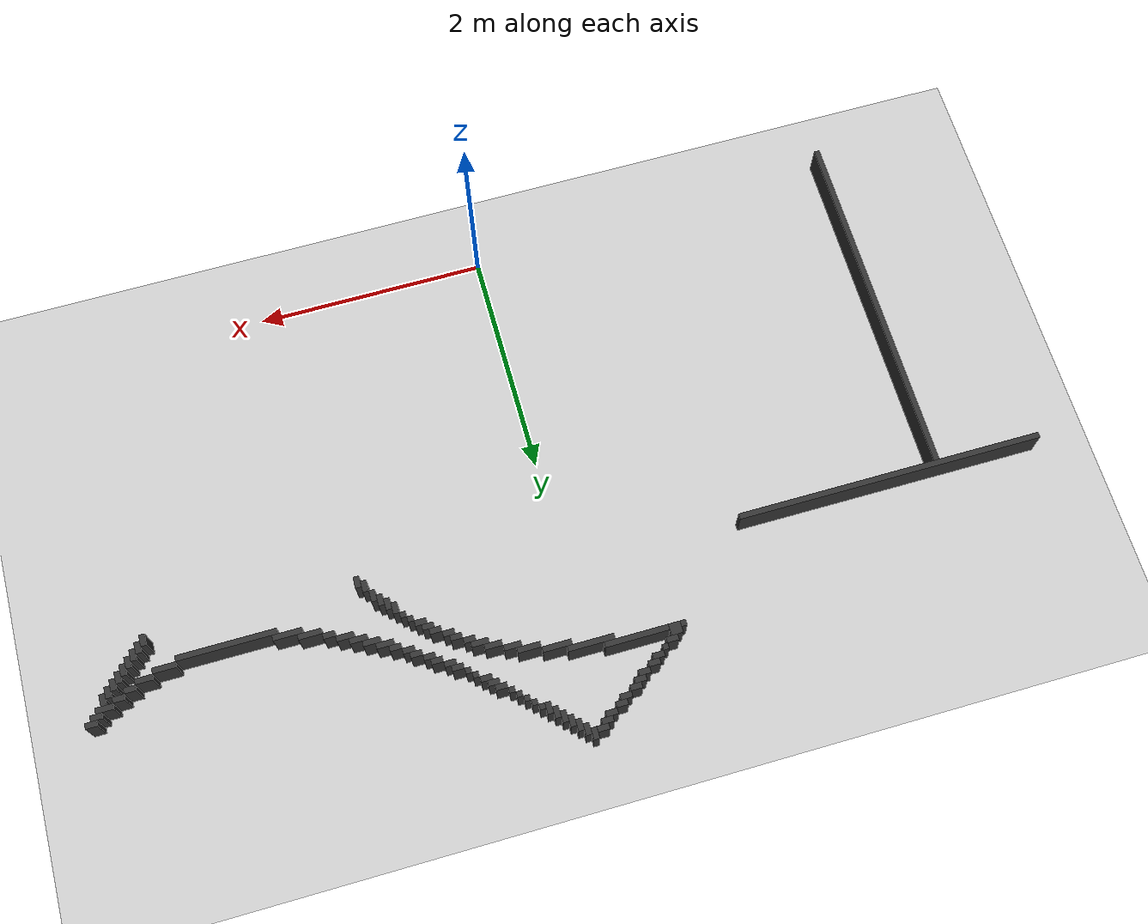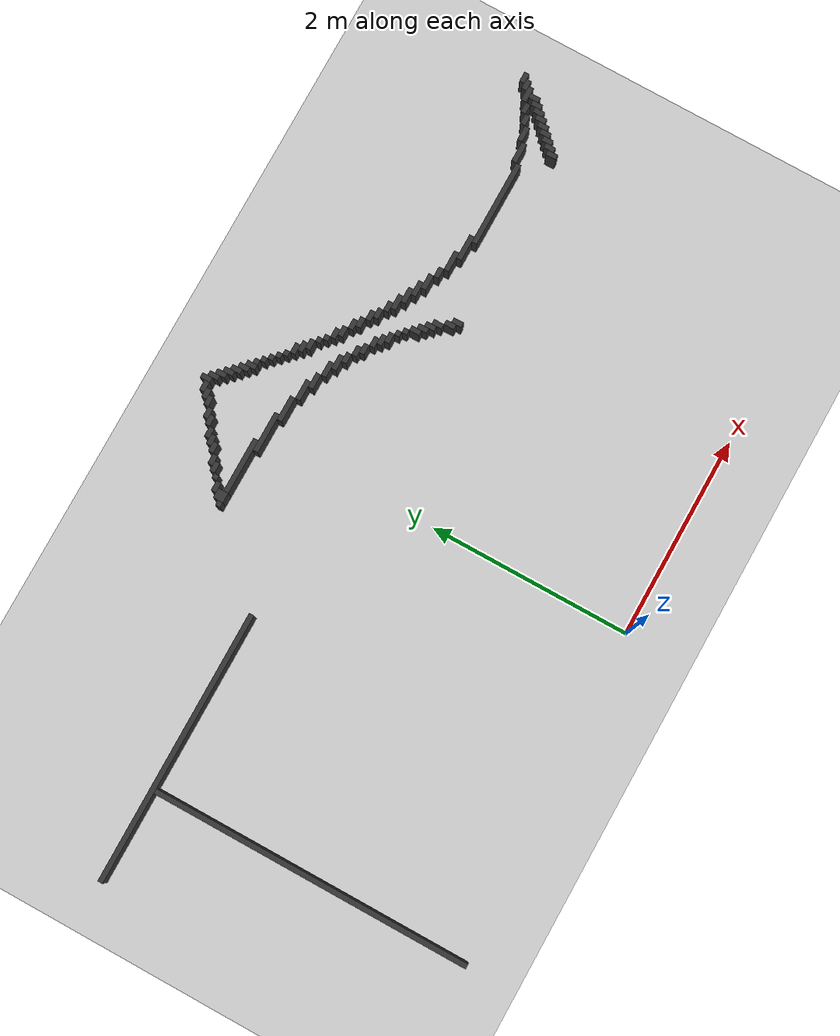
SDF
<sdf version="1.7">
 <world name="mapa_mundo">
  <model name="ground_plane">
   <static>true</static>
   <link name="link">
    <collision name="collision">
     <geometry><plane><normal>0 0 1</normal><size>10 10</size></plane></geometry>
     <surface><friction><ode><mu>100</mu><mu2>50</mu2></ode></friction></surface>
    </collision>
    <visual name="visual">
     <geometry><plane><normal>0 0 1</normal><size>10 10</size></plane></geometry>
     <material>
      <ambient>0.8 0.8 0.8 1</ambient>
      <diffuse>0.8 0.8 0.8 1</diffuse>
      <specular>0.8 0.8 0.8 1</specular>
     </material>
    </visual>
   </link>
  </model>
  <model name="wall_0">
   <static>true</static>
   <link name="link">
    <collision name="collision"><geometry><box><size>0.05 0.1 0.3</size></box></geometry></collision>
    <visual name="visual">
     <geometry><box><size>0.05 0.1 0.3</size></box></geometry>
     <material><ambient>0.2 0.2 0.2 1</ambient><diffuse>0.2 0.2 0.2 1</diffuse></material>
    </visual>
    <pose>0.17500000000000002 4.45 0.15 0 0 0</pose>
   </link>
  </model>
  <model name="wall_1">
   <static>true</static>
   <link name="link">
    <collision name="collision"><geometry><box><size>0.1 0.05 0.3</size></box></geometry></collision>
    <visual name="visual">
     <geometry><box><size>0.1 0.05 0.3</size></box></geometry>
     <material><ambient>0.2 0.2 0.2 1</ambient><diffuse>0.2 0.2 0.2 1</diffuse></material>
    </visual>
    <pose>0.1 4.425 0.15 0 0 0</pose>
   </link>
  </model>
  <model name="wall_2">
   <static>true</static>
   <link name="link">
    <collision name="collision"><geometry><box><size>0.05 0.1 0.3</size></box></geometry></collision>
    <visual name="visual">
     <geometry><box><size>0.05 0.1 0.3</size></box></geometry>
     <material><ambient>0.2 0.2 0.2 1</ambient><diffuse>0.2 0.2 0.2 1</diffuse></material>
    </visual>
    <pose>0.225 4.4 0.15 0 0 0</pose>
   </link>
  </model>
  <model name="wall_3">
   <static>true</static>
   <link name="link">
    <collision name="collision"><geometry><box><size>0.1 0.05 0.3</size></box></geometry></collision>
    <visual name="visual">
     <geometry><box><size>0.1 0.05 0.3</size></box></geometry>
     <material><ambient>0.2 0.2 0.2 1</ambient><diffuse>0.2 0.2 0.2 1</diffuse></material>
    </visual>
    <pose>0.05 4.375 0.15 0 0 0</pose>
   </link>
  </model>
  <model name="wall_4">
   <static>true</static>
   <link name="link">
    <collision name="collision"><geometry><box><size>0.05 0.1 0.3</size></box></geometry></collision>
    <visual name="visual">
     <geometry><box><size>0.05 0.1 0.3</size></box></geometry>
     <material><ambient>0.2 0.2 0.2 1</ambient><diffuse>0.2 0.2 0.2 1</diffuse></material>
    </visual>
    <pose>0.275 4.3500000000000005 0.15 0 0 0</pose>
   </link>
  </model>
  <model name="wall_5">
   <static>true</static>
   <link name="link">
    <collision name="collision"><geometry><box><size>0.1 0.05 0.3</size></box></geometry></collision>
    <visual name="visual">
     <geometry><box><size>0.1 0.05 0.3</size></box></geometry>
     <material><ambient>0.2 0.2 0.2 1</ambient><diffuse>0.2 0.2 0.2 1</diffuse></material>
    </visual>
    <pose>0.0 4.325 0.15 0 0 0</pose>
   </link>
  </model>
  <model name="wall_6">
   <static>true</static>
   <link name="link">
    <collision name="collision"><geometry><box><size>0.05 0.1 0.3</size></box></geometry></collision>
    <visual name="visual">
     <geometry><box><size>0.05 0.1 0.3</size></box></geometry>
     <material><ambient>0.2 0.2 0.2 1</ambient><diffuse>0.2 0.2 0.2 1</diffuse></material>
    </visual>
    <pose>0.325 4.3 0.15 0 0 0</pose>
   </link>
  </model>
  <model name="wall_7">
   <static>true</static>
   <link name="link">
    <collision name="collision"><geometry><box><size>0.1 0.05 0.3</size></box></geometry></collision>
    <visual name="visual">
     <geometry><box><size>0.1 0.05 0.3</size></box></geometry>
     <material><ambient>0.2 0.2 0.2 1</ambient><diffuse>0.2 0.2 0.2 1</diffuse></material>
    </visual>
    <pose>-0.1 4.275 0.15 0 0 0</pose>
   </link>
  </model>
  <model name="wall_8">
   <static>true</static>
   <link name="link">
    <collision name="collision"><geometry><box><size>0.05 0.1 0.3</size></box></geometry></collision>
    <visual name="visual">
     <geometry><box><size>0.05 0.1 0.3</size></box></geometry>
     <material><ambient>0.2 0.2 0.2 1</ambient><diffuse>0.2 0.2 0.2 1</diffuse></material>
    </visual>
    <pose>0.375 4.25 0.15 0 0 0</pose>
   </link>
  </model>
  <model name="wall_9">
   <static>true</static>
   <link name="link">
    <collision name="collision"><geometry><box><size>0.1 0.05 0.3</size></box></geometry></collision>
    <visual name="visual">
     <geometry><box><size>0.1 0.05 0.3</size></box></geometry>
     <material><ambient>0.2 0.2 0.2 1</ambient><diffuse>0.2 0.2 0.2 1</diffuse></material>
    </visual>
    <pose>-0.15000000000000002 4.2250000000000005 0.15 0 0 0</pose>
   </link>
  </model>
  <model name="wall_10">
   <static>true</static>
   <link name="link">
    <collision name="collision"><geometry><box><size>0.05 0.1 0.3</size></box></geometry></collision>
    <visual name="visual">
     <geometry><box><size>0.05 0.1 0.3</size></box></geometry>
     <material><ambient>0.2 0.2 0.2 1</ambient><diffuse>0.2 0.2 0.2 1</diffuse></material>
    </visual>
    <pose>0.42500000000000004 4.2 0.15 0 0 0</pose>
   </link>
  </model>
  <model name="wall_11">
   <static>true</static>
   <link name="link">
    <collision name="collision"><geometry><box><size>0.1 0.05 0.3</size></box></geometry></collision>
    <visual name="visual">
     <geometry><box><size>0.1 0.05 0.3</size></box></geometry>
     <material><ambient>0.2 0.2 0.2 1</ambient><diffuse>0.2 0.2 0.2 1</diffuse></material>
    </visual>
    <pose>-0.25 4.175 0.15 0 0 0</pose>
   </link>
  </model>
  <model name="wall_12">
   <static>true</static>
   <link name="link">
    <collision name="collision"><geometry><box><size>0.05 0.1 0.3</size></box></geometry></collision>
    <visual name="visual">
     <geometry><box><size>0.05 0.1 0.3</size></box></geometry>
     <material><ambient>0.2 0.2 0.2 1</ambient><diffuse>0.2 0.2 0.2 1</diffuse></material>
    </visual>
    <pose>0.47500000000000003 4.15 0.15 0 0 0</pose>
   </link>
  </model>
  <model name="wall_13">
   <static>true</static>
   <link name="link">
    <collision name="collision"><geometry><box><size>0.1 0.05 0.3</size></box></geometry></collision>
    <visual name="visual">
     <geometry><box><size>0.1 0.05 0.3</size></box></geometry>
     <material><ambient>0.2 0.2 0.2 1</ambient><diffuse>0.2 0.2 0.2 1</diffuse></material>
    </visual>
    <pose>-0.30000000000000004 4.125 0.15 0 0 0</pose>
   </link>
  </model>
  <model name="wall_14">
   <static>true</static>
   <link name="link">
    <collision name="collision"><geometry><box><size>0.05 0.05 0.3</size></box></geometry></collision>
    <visual name="visual">
     <geometry><box><size>0.05 0.05 0.3</size></box></geometry>
     <material><ambient>0.2 0.2 0.2 1</ambient><diffuse>0.2 0.2 0.2 1</diffuse></material>
    </visual>
    <pose>0.525 4.125 0.15 0 0 0</pose>
   </link>
  </model>
  <model name="wall_15">
   <static>true</static>
   <link name="link">
    <collision name="collision"><geometry><box><size>0.1 0.05 0.3</size></box></geometry></collision>
    <visual name="visual">
     <geometry><box><size>0.1 0.05 0.3</size></box></geometry>
     <material><ambient>0.2 0.2 0.2 1</ambient><diffuse>0.2 0.2 0.2 1</diffuse></material>
    </visual>
    <pose>-0.35000000000000003 4.075 0.15 0 0 0</pose>
   </link>
  </model>
  <model name="wall_16">
   <static>true</static>
   <link name="link">
    <collision name="collision"><geometry><box><size>0.05 0.05 0.3</size></box></geometry></collision>
    <visual name="visual">
     <geometry><box><size>0.05 0.05 0.3</size></box></geometry>
     <material><ambient>0.2 0.2 0.2 1</ambient><diffuse>0.2 0.2 0.2 1</diffuse></material>
    </visual>
    <pose>0.5750000000000001 4.075 0.15 0 0 0</pose>
   </link>
  </model>
  <model name="wall_17">
   <static>true</static>
   <link name="link">
    <collision name="collision"><geometry><box><size>0.1 0.05 0.3</size></box></geometry></collision>
    <visual name="visual">
     <geometry><box><size>0.1 0.05 0.3</size></box></geometry>
     <material><ambient>0.2 0.2 0.2 1</ambient><diffuse>0.2 0.2 0.2 1</diffuse></material>
    </visual>
    <pose>-0.45 4.025 0.15 0 0 0</pose>
   </link>
  </model>
  <model name="wall_18">
   <static>true</static>
   <link name="link">
    <collision name="collision"><geometry><box><size>0.05 0.05 0.3</size></box></geometry></collision>
    <visual name="visual">
     <geometry><box><size>0.05 0.05 0.3</size></box></geometry>
     <material><ambient>0.2 0.2 0.2 1</ambient><diffuse>0.2 0.2 0.2 1</diffuse></material>
    </visual>
    <pose>0.625 4.025 0.15 0 0 0</pose>
   </link>
  </model>
  <model name="wall_19">
   <static>true</static>
   <link name="link">
    <collision name="collision"><geometry><box><size>0.1 0.05 0.3</size></box></geometry></collision>
    <visual name="visual">
     <geometry><box><size>0.1 0.05 0.3</size></box></geometry>
     <material><ambient>0.2 0.2 0.2 1</ambient><diffuse>0.2 0.2 0.2 1</diffuse></material>
    </visual>
    <pose>-0.5 3.975 0.15 0 0 0</pose>
   </link>
  </model>
  <model name="wall_20">
   <static>true</static>
   <link name="link">
    <collision name="collision"><geometry><box><size>0.05 0.05 0.3</size></box></geometry></collision>
    <visual name="visual">
     <geometry><box><size>0.05 0.05 0.3</size></box></geometry>
     <material><ambient>0.2 0.2 0.2 1</ambient><diffuse>0.2 0.2 0.2 1</diffuse></material>
    </visual>
    <pose>0.675 3.975 0.15 0 0 0</pose>
   </link>
  </model>
  <model name="wall_21">
   <static>true</static>
   <link name="link">
    <collision name="collision"><geometry><box><size>0.05 0.05 0.3</size></box></geometry></collision>
    <visual name="visual">
     <geometry><box><size>0.05 0.05 0.3</size></box></geometry>
     <material><ambient>0.2 0.2 0.2 1</ambient><diffuse>0.2 0.2 0.2 1</diffuse></material>
    </visual>
    <pose>-0.5750000000000001 3.9250000000000003 0.15 0 0 0</pose>
   </link>
  </model>
  <model name="wall_22">
   <static>true</static>
   <link name="link">
    <collision name="collision"><geometry><box><size>0.05 0.05 0.3</size></box></geometry></collision>
    <visual name="visual">
     <geometry><box><size>0.05 0.05 0.3</size></box></geometry>
     <material><ambient>0.2 0.2 0.2 1</ambient><diffuse>0.2 0.2 0.2 1</diffuse></material>
    </visual>
    <pose>0.7250000000000001 3.9250000000000003 0.15 0 0 0</pose>
   </link>
  </model>
  <model name="wall_23">
   <static>true</static>
   <link name="link">
    <collision name="collision"><geometry><box><size>0.1 0.05 0.3</size></box></geometry></collision>
    <visual name="visual">
     <geometry><box><size>0.1 0.05 0.3</size></box></geometry>
     <material><ambient>0.2 0.2 0.2 1</ambient><diffuse>0.2 0.2 0.2 1</diffuse></material>
    </visual>
    <pose>-0.65 3.875 0.15 0 0 0</pose>
   </link>
  </model>
  <model name="wall_24">
   <static>true</static>
   <link name="link">
    <collision name="collision"><geometry><box><size>0.1 0.05 0.3</size></box></geometry></collision>
    <visual name="visual">
     <geometry><box><size>0.1 0.05 0.3</size></box></geometry>
     <material><ambient>0.2 0.2 0.2 1</ambient><diffuse>0.2 0.2 0.2 1</diffuse></material>
    </visual>
    <pose>0.8 3.875 0.15 0 0 0</pose>
   </link>
  </model>
  <model name="wall_25">
   <static>true</static>
   <link name="link">
    <collision name="collision"><geometry><box><size>0.1 0.1 0.3</size></box></geometry></collision>
    <visual name="visual">
     <geometry><box><size>0.1 0.1 0.3</size></box></geometry>
     <material><ambient>0.2 0.2 0.2 1</ambient><diffuse>0.2 0.2 0.2 1</diffuse></material>
    </visual>
    <pose>-0.7000000000000001 3.8000000000000003 0.15 0 0 0</pose>
   </link>
  </model>
  <model name="wall_26">
   <static>true</static>
   <link name="link">
    <collision name="collision"><geometry><box><size>0.1 0.05 0.3</size></box></geometry></collision>
    <visual name="visual">
     <geometry><box><size>0.1 0.05 0.3</size></box></geometry>
     <material><ambient>0.2 0.2 0.2 1</ambient><diffuse>0.2 0.2 0.2 1</diffuse></material>
    </visual>
    <pose>0.8500000000000001 3.825 0.15 0 0 0</pose>
   </link>
  </model>
  <model name="wall_27">
   <static>true</static>
   <link name="link">
    <collision name="collision"><geometry><box><size>0.05 0.05 0.3</size></box></geometry></collision>
    <visual name="visual">
     <geometry><box><size>0.05 0.05 0.3</size></box></geometry>
     <material><ambient>0.2 0.2 0.2 1</ambient><diffuse>0.2 0.2 0.2 1</diffuse></material>
    </visual>
    <pose>-0.775 3.7750000000000004 0.15 0 0 0</pose>
   </link>
  </model>
  <model name="wall_28">
   <static>true</static>
   <link name="link">
    <collision name="collision"><geometry><box><size>0.55 0.05 0.3</size></box></geometry></collision>
    <visual name="visual">
     <geometry><box><size>0.55 0.05 0.3</size></box></geometry>
     <material><ambient>0.2 0.2 0.2 1</ambient><diffuse>0.2 0.2 0.2 1</diffuse></material>
    </visual>
    <pose>-0.375 3.7750000000000004 0.15 0 0 0</pose>
   </link>
  </model>
  <model name="wall_29">
   <static>true</static>
   <link name="link">
    <collision name="collision"><geometry><box><size>0.1 0.05 0.3</size></box></geometry></collision>
    <visual name="visual">
     <geometry><box><size>0.1 0.05 0.3</size></box></geometry>
     <material><ambient>0.2 0.2 0.2 1</ambient><diffuse>0.2 0.2 0.2 1</diffuse></material>
    </visual>
    <pose>0.9 3.7750000000000004 0.15 0 0 0</pose>
   </link>
  </model>
  <model name="wall_30">
   <static>true</static>
   <link name="link">
    <collision name="collision"><geometry><box><size>0.4 0.05 0.3</size></box></geometry></collision>
    <visual name="visual">
     <geometry><box><size>0.4 0.05 0.3</size></box></geometry>
     <material><ambient>0.2 0.2 0.2 1</ambient><diffuse>0.2 0.2 0.2 1</diffuse></material>
    </visual>
    <pose>0.0 3.725 0.15 0 0 0</pose>
   </link>
  </model>
  <model name="wall_31">
   <static>true</static>
   <link name="link">
    <collision name="collision"><geometry><box><size>0.05 0.05 0.3</size></box></geometry></collision>
    <visual name="visual">
     <geometry><box><size>0.05 0.05 0.3</size></box></geometry>
     <material><ambient>0.2 0.2 0.2 1</ambient><diffuse>0.2 0.2 0.2 1</diffuse></material>
    </visual>
    <pose>0.9750000000000001 3.725 0.15 0 0 0</pose>
   </link>
  </model>
  <model name="wall_32">
   <static>true</static>
   <link name="link">
    <collision name="collision"><geometry><box><size>0.25 0.05 0.3</size></box></geometry></collision>
    <visual name="visual">
     <geometry><box><size>0.25 0.05 0.3</size></box></geometry>
     <material><ambient>0.2 0.2 0.2 1</ambient><diffuse>0.2 0.2 0.2 1</diffuse></material>
    </visual>
    <pose>0.275 3.6750000000000003 0.15 0 0 0</pose>
   </link>
  </model>
  <model name="wall_33">
   <static>true</static>
   <link name="link">
    <collision name="collision"><geometry><box><size>0.05 0.05 0.3</size></box></geometry></collision>
    <visual name="visual">
     <geometry><box><size>0.05 0.05 0.3</size></box></geometry>
     <material><ambient>0.2 0.2 0.2 1</ambient><diffuse>0.2 0.2 0.2 1</diffuse></material>
    </visual>
    <pose>1.0250000000000001 3.6750000000000003 0.15 0 0 0</pose>
   </link>
  </model>
  <model name="wall_34">
   <static>true</static>
   <link name="link">
    <collision name="collision"><geometry><box><size>0.2 0.05 0.3</size></box></geometry></collision>
    <visual name="visual">
     <geometry><box><size>0.2 0.05 0.3</size></box></geometry>
     <material><ambient>0.2 0.2 0.2 1</ambient><diffuse>0.2 0.2 0.2 1</diffuse></material>
    </visual>
    <pose>0.5 3.625 0.15 0 0 0</pose>
   </link>
  </model>
  <model name="wall_35">
   <static>true</static>
   <link name="link">
    <collision name="collision"><geometry><box><size>0.1 0.05 0.3</size></box></geometry></collision>
    <visual name="visual">
     <geometry><box><size>0.1 0.05 0.3</size></box></geometry>
     <material><ambient>0.2 0.2 0.2 1</ambient><diffuse>0.2 0.2 0.2 1</diffuse></material>
    </visual>
    <pose>1.1 3.625 0.15 0 0 0</pose>
   </link>
  </model>
  <model name="wall_36">
   <static>true</static>
   <link name="link">
    <collision name="collision">
     <geometry><box><size>0.15000000000000002 0.05 0.3</size></box></geometry>
    </collision>
    <visual name="visual">
     <geometry><box><size>0.15000000000000002 0.05 0.3</size></box></geometry>
     <material><ambient>0.2 0.2 0.2 1</ambient><diffuse>0.2 0.2 0.2 1</diffuse></material>
    </visual>
    <pose>0.625 3.575 0.15 0 0 0</pose>
   </link>
  </model>
  <model name="wall_37">
   <static>true</static>
   <link name="link">
    <collision name="collision"><geometry><box><size>0.1 0.05 0.3</size></box></geometry></collision>
    <visual name="visual">
     <geometry><box><size>0.1 0.05 0.3</size></box></geometry>
     <material><ambient>0.2 0.2 0.2 1</ambient><diffuse>0.2 0.2 0.2 1</diffuse></material>
    </visual>
    <pose>1.1500000000000001 3.575 0.15 0 0 0</pose>
   </link>
  </model>
  <model name="wall_38">
   <static>true</static>
   <link name="link">
    <collision name="collision">
     <geometry><box><size>0.15000000000000002 0.05 0.3</size></box></geometry>
    </collision>
    <visual name="visual">
     <geometry><box><size>0.15000000000000002 0.05 0.3</size></box></geometry>
     <material><ambient>0.2 0.2 0.2 1</ambient><diffuse>0.2 0.2 0.2 1</diffuse></material>
    </visual>
    <pose>0.775 3.5250000000000004 0.15 0 0 0</pose>
   </link>
  </model>
  <model name="wall_39">
   <static>true</static>
   <link name="link">
    <collision name="collision"><geometry><box><size>0.1 0.05 0.3</size></box></geometry></collision>
    <visual name="visual">
     <geometry><box><size>0.1 0.05 0.3</size></box></geometry>
     <material><ambient>0.2 0.2 0.2 1</ambient><diffuse>0.2 0.2 0.2 1</diffuse></material>
    </visual>
    <pose>1.25 3.5250000000000004 0.15 0 0 0</pose>
   </link>
  </model>
  <model name="wall_40">
   <static>true</static>
   <link name="link">
    <collision name="collision">
     <geometry><box><size>0.15000000000000002 0.05 0.3</size></box></geometry>
    </collision>
    <visual name="visual">
     <geometry><box><size>0.15000000000000002 0.05 0.3</size></box></geometry>
     <material><ambient>0.2 0.2 0.2 1</ambient><diffuse>0.2 0.2 0.2 1</diffuse></material>
    </visual>
    <pose>0.875 3.475 0.15 0 0 0</pose>
   </link>
  </model>
  <model name="wall_41">
   <static>true</static>
   <link name="link">
    <collision name="collision"><geometry><box><size>0.1 0.05 0.3</size></box></geometry></collision>
    <visual name="visual">
     <geometry><box><size>0.1 0.05 0.3</size></box></geometry>
     <material><ambient>0.2 0.2 0.2 1</ambient><diffuse>0.2 0.2 0.2 1</diffuse></material>
    </visual>
    <pose>1.3 3.475 0.15 0 0 0</pose>
   </link>
  </model>
  <model name="wall_42">
   <static>true</static>
   <link name="link">
    <collision name="collision"><geometry><box><size>0.1 0.05 0.3</size></box></geometry></collision>
    <visual name="visual">
     <geometry><box><size>0.1 0.05 0.3</size></box></geometry>
     <material><ambient>0.2 0.2 0.2 1</ambient><diffuse>0.2 0.2 0.2 1</diffuse></material>
    </visual>
    <pose>0.9500000000000001 3.4250000000000003 0.15 0 0 0</pose>
   </link>
  </model>
  <model name="wall_43">
   <static>true</static>
   <link name="link">
    <collision name="collision"><geometry><box><size>0.1 0.05 0.3</size></box></geometry></collision>
    <visual name="visual">
     <geometry><box><size>0.1 0.05 0.3</size></box></geometry>
     <material><ambient>0.2 0.2 0.2 1</ambient><diffuse>0.2 0.2 0.2 1</diffuse></material>
    </visual>
    <pose>1.4000000000000001 3.4250000000000003 0.15 0 0 0</pose>
   </link>
  </model>
  <model name="wall_44">
   <static>true</static>
   <link name="link">
    <collision name="collision"><geometry><box><size>0.1 0.05 0.3</size></box></geometry></collision>
    <visual name="visual">
     <geometry><box><size>0.1 0.05 0.3</size></box></geometry>
     <material><ambient>0.2 0.2 0.2 1</ambient><diffuse>0.2 0.2 0.2 1</diffuse></material>
    </visual>
    <pose>1.05 3.375 0.15 0 0 0</pose>
   </link>
  </model>
  <model name="wall_45">
   <static>true</static>
   <link name="link">
    <collision name="collision"><geometry><box><size>0.1 0.05 0.3</size></box></geometry></collision>
    <visual name="visual">
     <geometry><box><size>0.1 0.05 0.3</size></box></geometry>
     <material><ambient>0.2 0.2 0.2 1</ambient><diffuse>0.2 0.2 0.2 1</diffuse></material>
    </visual>
    <pose>1.4500000000000002 3.375 0.15 0 0 0</pose>
   </link>
  </model>
  <model name="wall_46">
   <static>true</static>
   <link name="link">
    <collision name="collision"><geometry><box><size>0.1 0.05 0.3</size></box></geometry></collision>
    <visual name="visual">
     <geometry><box><size>0.1 0.05 0.3</size></box></geometry>
     <material><ambient>0.2 0.2 0.2 1</ambient><diffuse>0.2 0.2 0.2 1</diffuse></material>
    </visual>
    <pose>1.1 3.325 0.15 0 0 0</pose>
   </link>
  </model>
  <model name="wall_47">
   <static>true</static>
   <link name="link">
    <collision name="collision"><geometry><box><size>0.1 0.05 0.3</size></box></geometry></collision>
    <visual name="visual">
     <geometry><box><size>0.1 0.05 0.3</size></box></geometry>
     <material><ambient>0.2 0.2 0.2 1</ambient><diffuse>0.2 0.2 0.2 1</diffuse></material>
    </visual>
    <pose>1.55 3.325 0.15 0 0 0</pose>
   </link>
  </model>
  <model name="wall_48">
   <static>true</static>
   <link name="link">
    <collision name="collision"><geometry><box><size>0.1 0.05 0.3</size></box></geometry></collision>
    <visual name="visual">
     <geometry><box><size>0.1 0.05 0.3</size></box></geometry>
     <material><ambient>0.2 0.2 0.2 1</ambient><diffuse>0.2 0.2 0.2 1</diffuse></material>
    </visual>
    <pose>1.2000000000000002 3.2750000000000004 0.15 0 0 0</pose>
   </link>
  </model>
  <model name="wall_49">
   <static>true</static>
   <link name="link">
    <collision name="collision">
     <geometry><box><size>0.15000000000000002 0.05 0.3</size></box></geometry>
    </collision>
    <visual name="visual">
     <geometry><box><size>0.15000000000000002 0.05 0.3</size></box></geometry>
     <material><ambient>0.2 0.2 0.2 1</ambient><diffuse>0.2 0.2 0.2 1</diffuse></material>
    </visual>
    <pose>1.625 3.2750000000000004 0.15 0 0 0</pose>
   </link>
  </model>
  <model name="wall_50">
   <static>true</static>
   <link name="link">
    <collision name="collision"><geometry><box><size>0.1 0.05 0.3</size></box></geometry></collision>
    <visual name="visual">
     <geometry><box><size>0.1 0.05 0.3</size></box></geometry>
     <material><ambient>0.2 0.2 0.2 1</ambient><diffuse>0.2 0.2 0.2 1</diffuse></material>
    </visual>
    <pose>4.05 3.2750000000000004 0.15 0 0 0</pose>
   </link>
  </model>
  <model name="wall_51">
   <static>true</static>
   <link name="link">
    <collision name="collision"><geometry><box><size>0.1 0.05 0.3</size></box></geometry></collision>
    <visual name="visual">
     <geometry><box><size>0.1 0.05 0.3</size></box></geometry>
     <material><ambient>0.2 0.2 0.2 1</ambient><diffuse>0.2 0.2 0.2 1</diffuse></material>
    </visual>
    <pose>1.25 3.225 0.15 0 0 0</pose>
   </link>
  </model>
  <model name="wall_52">
   <static>true</static>
   <link name="link">
    <collision name="collision">
     <geometry><box><size>0.15000000000000002 0.05 0.3</size></box></geometry>
    </collision>
    <visual name="visual">
     <geometry><box><size>0.15000000000000002 0.05 0.3</size></box></geometry>
     <material><ambient>0.2 0.2 0.2 1</ambient><diffuse>0.2 0.2 0.2 1</diffuse></material>
    </visual>
    <pose>1.725 3.225 0.15 0 0 0</pose>
   </link>
  </model>
  <model name="wall_53">
   <static>true</static>
   <link name="link">
    <collision name="collision"><geometry><box><size>0.1 0.05 0.3</size></box></geometry></collision>
    <visual name="visual">
     <geometry><box><size>0.1 0.05 0.3</size></box></geometry>
     <material><ambient>0.2 0.2 0.2 1</ambient><diffuse>0.2 0.2 0.2 1</diffuse></material>
    </visual>
    <pose>4.0 3.225 0.15 0 0 0</pose>
   </link>
  </model>
  <model name="wall_54">
   <static>true</static>
   <link name="link">
    <collision name="collision"><geometry><box><size>0.1 0.05 0.3</size></box></geometry></collision>
    <visual name="visual">
     <geometry><box><size>0.1 0.05 0.3</size></box></geometry>
     <material><ambient>0.2 0.2 0.2 1</ambient><diffuse>0.2 0.2 0.2 1</diffuse></material>
    </visual>
    <pose>1.3 3.1750000000000003 0.15 0 0 0</pose>
   </link>
  </model>
  <model name="wall_55">
   <static>true</static>
   <link name="link">
    <collision name="collision">
     <geometry><box><size>0.15000000000000002 0.05 0.3</size></box></geometry>
    </collision>
    <visual name="visual">
     <geometry><box><size>0.15000000000000002 0.05 0.3</size></box></geometry>
     <material><ambient>0.2 0.2 0.2 1</ambient><diffuse>0.2 0.2 0.2 1</diffuse></material>
    </visual>
    <pose>1.8250000000000002 3.1750000000000003 0.15 0 0 0</pose>
   </link>
  </model>
  <model name="wall_56">
   <static>true</static>
   <link name="link">
    <collision name="collision">
     <geometry><box><size>0.15000000000000002 0.05 0.3</size></box></geometry>
    </collision>
    <visual name="visual">
     <geometry><box><size>0.15000000000000002 0.05 0.3</size></box></geometry>
     <material><ambient>0.2 0.2 0.2 1</ambient><diffuse>0.2 0.2 0.2 1</diffuse></material>
    </visual>
    <pose>3.9250000000000003 3.1750000000000003 0.15 0 0 0</pose>
   </link>
  </model>
  <model name="wall_57">
   <static>true</static>
   <link name="link">
    <collision name="collision"><geometry><box><size>0.05 0.05 0.3</size></box></geometry></collision>
    <visual name="visual">
     <geometry><box><size>0.05 0.05 0.3</size></box></geometry>
     <material><ambient>0.2 0.2 0.2 1</ambient><diffuse>0.2 0.2 0.2 1</diffuse></material>
    </visual>
    <pose>1.375 3.125 0.15 0 0 0</pose>
   </link>
  </model>
  <model name="wall_58">
   <static>true</static>
   <link name="link">
    <collision name="collision">
     <geometry><box><size>0.15000000000000002 0.05 0.3</size></box></geometry>
    </collision>
    <visual name="visual">
     <geometry><box><size>0.15000000000000002 0.05 0.3</size></box></geometry>
     <material><ambient>0.2 0.2 0.2 1</ambient><diffuse>0.2 0.2 0.2 1</diffuse></material>
    </visual>
    <pose>1.925 3.125 0.15 0 0 0</pose>
   </link>
  </model>
  <model name="wall_59">
   <static>true</static>
   <link name="link">
    <collision name="collision"><geometry><box><size>0.1 0.05 0.3</size></box></geometry></collision>
    <visual name="visual">
     <geometry><box><size>0.1 0.05 0.3</size></box></geometry>
     <material><ambient>0.2 0.2 0.2 1</ambient><diffuse>0.2 0.2 0.2 1</diffuse></material>
    </visual>
    <pose>3.8000000000000003 3.125 0.15 0 0 0</pose>
   </link>
  </model>
  <model name="wall_60">
   <static>true</static>
   <link name="link">
    <collision name="collision"><geometry><box><size>0.05 0.1 0.3</size></box></geometry></collision>
    <visual name="visual">
     <geometry><box><size>0.05 0.1 0.3</size></box></geometry>
     <material><ambient>0.2 0.2 0.2 1</ambient><diffuse>0.2 0.2 0.2 1</diffuse></material>
    </visual>
    <pose>3.9250000000000003 3.1 0.15 0 0 0</pose>
   </link>
  </model>
  <model name="wall_61">
   <static>true</static>
   <link name="link">
    <collision name="collision"><geometry><box><size>0.05 0.05 0.3</size></box></geometry></collision>
    <visual name="visual">
     <geometry><box><size>0.05 0.05 0.3</size></box></geometry>
     <material><ambient>0.2 0.2 0.2 1</ambient><diffuse>0.2 0.2 0.2 1</diffuse></material>
    </visual>
    <pose>1.425 3.075 0.15 0 0 0</pose>
   </link>
  </model>
  <model name="wall_62">
   <static>true</static>
   <link name="link">
    <collision name="collision"><geometry><box><size>0.1 0.05 0.3</size></box></geometry></collision>
    <visual name="visual">
     <geometry><box><size>0.1 0.05 0.3</size></box></geometry>
     <material><ambient>0.2 0.2 0.2 1</ambient><diffuse>0.2 0.2 0.2 1</diffuse></material>
    </visual>
    <pose>2.0500000000000003 3.075 0.15 0 0 0</pose>
   </link>
  </model>
  <model name="wall_63">
   <static>true</static>
   <link name="link">
    <collision name="collision"><geometry><box><size>0.1 0.05 0.3</size></box></geometry></collision>
    <visual name="visual">
     <geometry><box><size>0.1 0.05 0.3</size></box></geometry>
     <material><ambient>0.2 0.2 0.2 1</ambient><diffuse>0.2 0.2 0.2 1</diffuse></material>
    </visual>
    <pose>3.7 3.075 0.15 0 0 0</pose>
   </link>
  </model>
  <model name="wall_64">
   <static>true</static>
   <link name="link">
    <collision name="collision"><geometry><box><size>0.05 0.1 0.3</size></box></geometry></collision>
    <visual name="visual">
     <geometry><box><size>0.05 0.1 0.3</size></box></geometry>
     <material><ambient>0.2 0.2 0.2 1</ambient><diffuse>0.2 0.2 0.2 1</diffuse></material>
    </visual>
    <pose>3.875 3.0500000000000003 0.15 0 0 0</pose>
   </link>
  </model>
  <model name="wall_65">
   <static>true</static>
   <link name="link">
    <collision name="collision"><geometry><box><size>2.7 0.05 0.3</size></box></geometry></collision>
    <visual name="visual">
     <geometry><box><size>2.7 0.05 0.3</size></box></geometry>
     <material><ambient>0.2 0.2 0.2 1</ambient><diffuse>0.2 0.2 0.2 1</diffuse></material>
    </visual>
    <pose>-2.85 3.0250000000000004 0.15 0 0 0</pose>
   </link>
  </model>
  <model name="wall_66">
   <static>true</static>
   <link name="link">
    <collision name="collision"><geometry><box><size>0.05 0.1 0.3</size></box></geometry></collision>
    <visual name="visual">
     <geometry><box><size>0.05 0.1 0.3</size></box></geometry>
     <material><ambient>0.2 0.2 0.2 1</ambient><diffuse>0.2 0.2 0.2 1</diffuse></material>
    </visual>
    <pose>1.475 3.0 0.15 0 0 0</pose>
   </link>
  </model>
  <model name="wall_67">
   <static>true</static>
   <link name="link">
    <collision name="collision"><geometry><box><size>0.2 0.05 0.3</size></box></geometry></collision>
    <visual name="visual">
     <geometry><box><size>0.2 0.05 0.3</size></box></geometry>
     <material><ambient>0.2 0.2 0.2 1</ambient><diffuse>0.2 0.2 0.2 1</diffuse></material>
    </visual>
    <pose>2.2 3.0250000000000004 0.15 0 0 0</pose>
   </link>
  </model>
  <model name="wall_68">
   <static>true</static>
   <link name="link">
    <collision name="collision">
     <geometry><box><size>0.15000000000000002 0.05 0.3</size></box></geometry>
    </collision>
    <visual name="visual">
     <geometry><box><size>0.15000000000000002 0.05 0.3</size></box></geometry>
     <material><ambient>0.2 0.2 0.2 1</ambient><diffuse>0.2 0.2 0.2 1</diffuse></material>
    </visual>
    <pose>3.575 3.0250000000000004 0.15 0 0 0</pose>
   </link>
  </model>
  <model name="wall_69">
   <static>true</static>
   <link name="link">
    <collision name="collision"><geometry><box><size>0.05 0.1 0.3</size></box></geometry></collision>
    <visual name="visual">
     <geometry><box><size>0.05 0.1 0.3</size></box></geometry>
     <material><ambient>0.2 0.2 0.2 1</ambient><diffuse>0.2 0.2 0.2 1</diffuse></material>
    </visual>
    <pose>3.825 3.0 0.15 0 0 0</pose>
   </link>
  </model>
  <model name="wall_70">
   <static>true</static>
   <link name="link">
    <collision name="collision">
     <geometry><box><size>0.05 3.1500000000000004 0.3</size></box></geometry>
    </collision>
    <visual name="visual">
     <geometry><box><size>0.05 3.1500000000000004 0.3</size></box></geometry>
     <material><ambient>0.2 0.2 0.2 1</ambient><diffuse>0.2 0.2 0.2 1</diffuse></material>
    </visual>
    <pose>-3.2750000000000004 1.425 0.15 0 0 0</pose>
   </link>
  </model>
  <model name="wall_71">
   <static>true</static>
   <link name="link">
    <collision name="collision"><geometry><box><size>0.05 0.1 0.3</size></box></geometry></collision>
    <visual name="visual">
     <geometry><box><size>0.05 0.1 0.3</size></box></geometry>
     <material><ambient>0.2 0.2 0.2 1</ambient><diffuse>0.2 0.2 0.2 1</diffuse></material>
    </visual>
    <pose>1.5250000000000001 2.95 0.15 0 0 0</pose>
   </link>
  </model>
  <model name="wall_72">
   <static>true</static>
   <link name="link">
    <collision name="collision"><geometry><box><size>0.25 0.05 0.3</size></box></geometry></collision>
    <visual name="visual">
     <geometry><box><size>0.25 0.05 0.3</size></box></geometry>
     <material><ambient>0.2 0.2 0.2 1</ambient><diffuse>0.2 0.2 0.2 1</diffuse></material>
    </visual>
    <pose>2.375 2.975 0.15 0 0 0</pose>
   </link>
  </model>
  <model name="wall_73">
   <static>true</static>
   <link name="link">
    <collision name="collision"><geometry><box><size>0.2 0.05 0.3</size></box></geometry></collision>
    <visual name="visual">
     <geometry><box><size>0.2 0.05 0.3</size></box></geometry>
     <material><ambient>0.2 0.2 0.2 1</ambient><diffuse>0.2 0.2 0.2 1</diffuse></material>
    </visual>
    <pose>3.4000000000000004 2.975 0.15 0 0 0</pose>
   </link>
  </model>
  <model name="wall_74">
   <static>true</static>
   <link name="link">
    <collision name="collision"><geometry><box><size>0.05 0.1 0.3</size></box></geometry></collision>
    <visual name="visual">
     <geometry><box><size>0.05 0.1 0.3</size></box></geometry>
     <material><ambient>0.2 0.2 0.2 1</ambient><diffuse>0.2 0.2 0.2 1</diffuse></material>
    </visual>
    <pose>3.7750000000000004 2.95 0.15 0 0 0</pose>
   </link>
  </model>
  <model name="wall_75">
   <static>true</static>
   <link name="link">
    <collision name="collision"><geometry><box><size>0.05 0.1 0.3</size></box></geometry></collision>
    <visual name="visual">
     <geometry><box><size>0.05 0.1 0.3</size></box></geometry>
     <material><ambient>0.2 0.2 0.2 1</ambient><diffuse>0.2 0.2 0.2 1</diffuse></material>
    </visual>
    <pose>1.5750000000000002 2.9000000000000004 0.15 0 0 0</pose>
   </link>
  </model>
  <model name="wall_76">
   <static>true</static>
   <link name="link">
    <collision name="collision">
     <geometry><box><size>0.8500000000000001 0.05 0.3</size></box></geometry>
    </collision>
    <visual name="visual">
     <geometry><box><size>0.8500000000000001 0.05 0.3</size></box></geometry>
     <material><ambient>0.2 0.2 0.2 1</ambient><diffuse>0.2 0.2 0.2 1</diffuse></material>
    </visual>
    <pose>2.875 2.9250000000000003 0.15 0 0 0</pose>
   </link>
  </model>
  <model name="wall_77">
   <static>true</static>
   <link name="link">
    <collision name="collision"><geometry><box><size>0.05 0.1 0.3</size></box></geometry></collision>
    <visual name="visual">
     <geometry><box><size>0.05 0.1 0.3</size></box></geometry>
     <material><ambient>0.2 0.2 0.2 1</ambient><diffuse>0.2 0.2 0.2 1</diffuse></material>
    </visual>
    <pose>3.725 2.9000000000000004 0.15 0 0 0</pose>
   </link>
  </model>
  <model name="wall_78">
   <static>true</static>
   <link name="link">
    <collision name="collision"><geometry><box><size>0.05 0.1 0.3</size></box></geometry></collision>
    <visual name="visual">
     <geometry><box><size>0.05 0.1 0.3</size></box></geometry>
     <material><ambient>0.2 0.2 0.2 1</ambient><diffuse>0.2 0.2 0.2 1</diffuse></material>
    </visual>
    <pose>1.625 2.85 0.15 0 0 0</pose>
   </link>
  </model>
  <model name="wall_79">
   <static>true</static>
   <link name="link">
    <collision name="collision"><geometry><box><size>0.05 0.1 0.3</size></box></geometry></collision>
    <visual name="visual">
     <geometry><box><size>0.05 0.1 0.3</size></box></geometry>
     <material><ambient>0.2 0.2 0.2 1</ambient><diffuse>0.2 0.2 0.2 1</diffuse></material>
    </visual>
    <pose>3.6750000000000003 2.85 0.15 0 0 0</pose>
   </link>
  </model>
  <model name="wall_80">
   <static>true</static>
   <link name="link">
    <collision name="collision"><geometry><box><size>0.05 0.1 0.3</size></box></geometry></collision>
    <visual name="visual">
     <geometry><box><size>0.05 0.1 0.3</size></box></geometry>
     <material><ambient>0.2 0.2 0.2 1</ambient><diffuse>0.2 0.2 0.2 1</diffuse></material>
    </visual>
    <pose>3.625 2.8000000000000003 0.15 0 0 0</pose>
   </link>
  </model>
  <model name="wall_81">
   <static>true</static>
   <link name="link">
    <collision name="collision"><geometry><box><size>0.05 0.1 0.3</size></box></geometry></collision>
    <visual name="visual">
     <geometry><box><size>0.05 0.1 0.3</size></box></geometry>
     <material><ambient>0.2 0.2 0.2 1</ambient><diffuse>0.2 0.2 0.2 1</diffuse></material>
    </visual>
    <pose>1.675 2.75 0.15 0 0 0</pose>
   </link>
  </model>
  <model name="wall_82">
   <static>true</static>
   <link name="link">
    <collision name="collision"><geometry><box><size>0.05 0.1 0.3</size></box></geometry></collision>
    <visual name="visual">
     <geometry><box><size>0.05 0.1 0.3</size></box></geometry>
     <material><ambient>0.2 0.2 0.2 1</ambient><diffuse>0.2 0.2 0.2 1</diffuse></material>
    </visual>
    <pose>3.575 2.75 0.15 0 0 0</pose>
   </link>
  </model>
  <model name="wall_83">
   <static>true</static>
   <link name="link">
    <collision name="collision"><geometry><box><size>0.05 0.1 0.3</size></box></geometry></collision>
    <visual name="visual">
     <geometry><box><size>0.05 0.1 0.3</size></box></geometry>
     <material><ambient>0.2 0.2 0.2 1</ambient><diffuse>0.2 0.2 0.2 1</diffuse></material>
    </visual>
    <pose>1.725 2.7 0.15 0 0 0</pose>
   </link>
  </model>
  <model name="wall_84">
   <static>true</static>
   <link name="link">
    <collision name="collision"><geometry><box><size>0.05 0.1 0.3</size></box></geometry></collision>
    <visual name="visual">
     <geometry><box><size>0.05 0.1 0.3</size></box></geometry>
     <material><ambient>0.2 0.2 0.2 1</ambient><diffuse>0.2 0.2 0.2 1</diffuse></material>
    </visual>
    <pose>3.5250000000000004 2.7 0.15 0 0 0</pose>
   </link>
  </model>
 </world>
</sdf>
